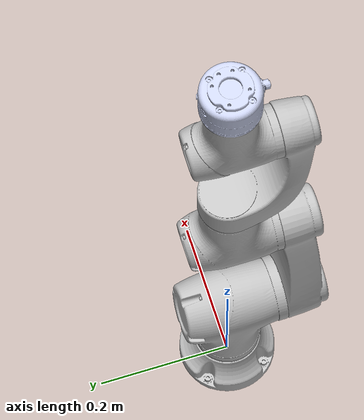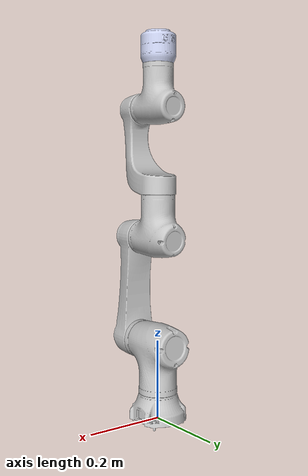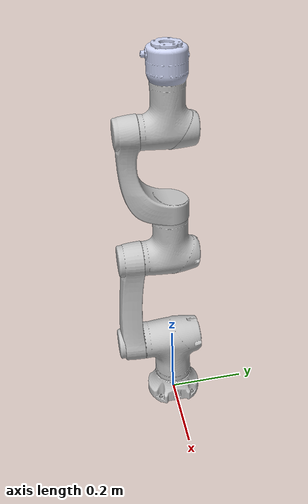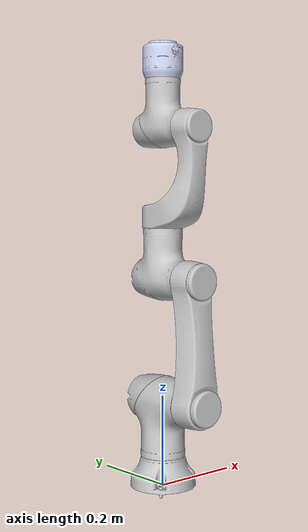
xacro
<?xml version="1.0"?>

<robot name="elfin3_pro" xmlns:xacro="http://wiki.ros.org/xacro">

  <xacro:arg name="use_real_hardware" default="true" />
  <xacro:arg name="use_fake_hardware" default="false" />

  <!-- Load TRANSMISSION file: -->
  <xacro:include filename="$(find elfin3_pro_ros2_gazebo)/urdf/elfin3_pro_transmission.xacro" />
  <!-- Load GAZEBO/ROS2_CONTROL file: -->
  <xacro:include filename="$(find elfin3_pro_ros2_gazebo)/urdf/elfin3_pro_gazebo.xacro" />

  <xacro:property name="PI" value="3.1415926535897931"/>

  <xacro:property name="density" value="3.09"/>

    <!-- TRANSMISSION: -->
    <xacro:elfin3_pro_transmission />
    <!-- GAZEBO - ROS2_CONTROL: -->
    <xacro:elfin3_pro_gazebo
    use_real_hardware="$(arg use_real_hardware)"
    use_fake_hardware="$(arg use_fake_hardware)"/>

  <link name="world"/>

  <joint name="world_base" type="fixed">
    <origin
      xyz="0 0 0"
      rpy="0 0 0" />
    <parent
      link="world" />
    <child
      link="elfin_base_link" />
  </joint>

  <link name="elfin_base_link"/>

  <joint name="elfin_base_joint" type="fixed">
    <origin
      xyz="0 0 0"
      rpy="0 0 0" />
    <parent
      link="elfin_base_link" />
    <child
      link="elfin_base" />
  </joint>

 <link
    name="elfin_base">
    <inertial>
      <origin
        xyz="-0.000275485599623296 7.59034702890055E-06 0.0267651528589008"
        rpy="0 0 0" />
      <mass
        value="0.728456071678781" />
      <inertia
        ixx="0.000970397629421625"
        ixy="3.62553999571498E-08"
        ixz="-1.47235460345842E-05"
        iyy="0.000882807913205131"
        iyz="-5.96416765250318E-08"
        izz="0.00145846071899871" />
    </inertial>
    <visual>
      <origin
        xyz="0 0 0"
        rpy="0 0 0" />
      <geometry>
        <mesh
          filename="file://$(find elfin_description)/meshes/elfin3_pro/elfin_base.STL" />
      </geometry>
      <material
        name="">
        <color
          rgba="0.752941176470588 0.752941176470588 0.752941176470588 1" />
      </material>
    </visual>
    <collision>
      <origin
        xyz="0 0 0"
        rpy="0 0 0" />
      <geometry>
        <mesh
          filename="file://$(find elfin_description)/meshes/elfin3_pro/elfin_base.STL" />
      </geometry>
    </collision>
  </link>
  <link
    name="elfin_link1">
    <inertial>
      <origin
        xyz="-9.19954052376613E-06 -0.0056323151590073 -0.0303120037895113"
        rpy="0 0 0" />
      <mass
        value="1.92524034587899" />
      <inertia
        ixx="0.0058722816317351"
        ixy="-7.23504344044524E-07"
        ixz="-2.49391334412292E-07"
        iyy="0.005172795229408"
        iyz="0.00112367432000291"
        izz="0.00316962454146614" />
    </inertial>
    <visual>
      <origin
        xyz="0 0 0"
        rpy="0 0 0" />
      <geometry>
        <mesh
          filename="file://$(find elfin_description)/meshes/elfin3_pro/elfin_link1.STL" />
      </geometry>
      <material
        name="">
        <color
          rgba="0.752941176470588 0.752941176470588 0.752941176470588 1" />
      </material>
    </visual>
    <collision>
      <origin
        xyz="0 0 0"
        rpy="0 0 0" />
      <geometry>
        <mesh
          filename="file://$(find elfin_description)/meshes/elfin3_pro/elfin_link1.STL" />
      </geometry>
    </collision>
  </link>
  <joint
    name="elfin_joint1"
    type="revolute">
    <origin
      xyz="0 0 0.1925"
      rpy="0 0 0" />
    <parent
      link="elfin_base" />
    <child
      link="elfin_link1" />
    <axis
      xyz="0 0 1" />
    <limit
      lower="-3.14"
      upper="3.14"
      effort="420"
      velocity="1.57" />
  </joint>
  <link
    name="elfin_link2">
    <inertial>
      <origin
        xyz="-1.22565268329047E-05 0.122777737373448 0.107534195375148"
        rpy="0 0 0" />
      <mass
        value="1.33352205550548" />
      <inertia
        ixx="0.0115890392637474"
        ixy="2.47639007244242E-06"
        ixz="-1.30890011076168E-07"
        iyy="0.000874262499109598"
        iyz="0.000516659498705414"
        izz="0.011961985959806" />
    </inertial>
    <visual>
      <origin
        xyz="0 0 0"
        rpy="0 0 0" />
      <geometry>
        <mesh
          filename="file://$(find elfin_description)/meshes/elfin3_pro/elfin_link2.STL" />
      </geometry>
      <material
        name="">
        <color
          rgba="0.752941176470588 0.752941176470588 0.752941176470588 1" />
      </material>
    </visual>
    <collision>
      <origin
        xyz="0 0 0"
        rpy="0 0 0" />
      <geometry>
        <mesh
          filename="file://$(find elfin_description)/meshes/elfin3_pro/elfin_link2.STL" />
      </geometry>
    </collision>
  </link>
  <joint
    name="elfin_joint2"
    type="revolute">
    <origin
      xyz="0 0 0"
      rpy="1.5708 0 0" />
    <parent
      link="elfin_link1" />
    <child
      link="elfin_link2" />
    <axis
      xyz="0 0 1" />
    <limit
      lower="-2.35"
      upper="2.35"
    effort="420"
      velocity="1.57" />
  </joint>
  <link
    name="elfin_link3">
    <inertial>
      <origin
        xyz="0.0273557300565924 5.44923368373772E-06 -0.00488491800210272"
        rpy="0 0 0" />
      <mass
        value="1.35222262444915" />
      <inertia
        ixx="0.00178062512968837"
        ixy="-2.23487843972252E-07"
        ixz="-0.000626861823592519"
        iyy="0.00332332684559261"
        iyz="-5.61198174626088E-07"
        izz="0.00287612109599716" />
    </inertial>
    <visual>
      <origin
        xyz="0 0 0"
        rpy="0 0 0" />
      <geometry>
        <mesh
          filename="file://$(find elfin_description)/meshes/elfin3_pro/elfin_link3.STL" />
      </geometry>
      <material
        name="">
        <color
          rgba="0.752941176470588 0.752941176470588 0.752941176470588 1" />
      </material>
    </visual>
    <collision>
      <origin
        xyz="0 0 0"
        rpy="0 0 0" />
      <geometry>
        <mesh
          filename="file://$(find elfin_description)/meshes/elfin3_pro/elfin_link3.STL" />
      </geometry>
    </collision>
  </link>
  <joint
    name="elfin_joint3"
    type="revolute">
    <origin
      xyz="0 0.266 0"
      rpy="3.1416 0 1.5708" />
    <parent
      link="elfin_link2" />
    <child
      link="elfin_link3" />
    <axis
      xyz="0 0 1" />
    <limit
      lower="-2.61"
      upper="2.61"
      effort="200"
      velocity="1.57" />
  </joint>
  <link
    name="elfin_link4">
    <inertial>
      <origin
        xyz="1.85755668727567E-06 -0.0570137437770611 0.20156180425512"
        rpy="0 0 0" />
      <mass
        value="1.07037349094834" />
      <inertia
        ixx="0.00657419518422127"
        ixy="3.55281474333352E-08"
        ixz="-4.08470748185401E-09"
        iyy="0.00537840730505389"
        iyz="0.00190728714674729"
        izz="0.00214023771843289" />
    </inertial>
    <visual>
      <origin
        xyz="0 0 0"
        rpy="0 0 0" />
      <geometry>
        <mesh
          filename="file://$(find elfin_description)/meshes/elfin3_pro/elfin_link4.STL" />
      </geometry>
      <material
        name="">
        <color
          rgba="0.752941176470588 0.752941176470588 0.752941176470588 1" />
      </material>
    </visual>
    <collision>
      <origin
        xyz="0 0 0"
        rpy="0 0 0" />
      <geometry>
        <mesh
          filename="file://$(find elfin_description)/meshes/elfin3_pro/elfin_link4.STL" />
      </geometry>
    </collision>
  </link>
  <joint
    name="elfin_joint4"
    type="revolute">
    <origin
      xyz="0 0 0"
      rpy="1.5708 0 1.5708" />
    <parent
      link="elfin_link3" />
    <child
      link="elfin_link4" />
    <axis
      xyz="0 0 1" />
    <limit
      lower="-3.14"
      upper="3.14"
      effort="200"
      velocity="1.57" />
  </joint>
  <link
    name="elfin_link5">
    <inertial>
      <origin
        xyz="1.3137995099076E-07 -0.0261329710845253 -0.00374026378281865"
        rpy="0 0 0" />
      <mass
        value="1.00586347330895" />
      <inertia
        ixx="0.00214966834755171"
        ixy="3.80046294098656E-08"
        ixz="8.42629576713527E-08"
        iyy="0.00109172648963445"
        iyz="0.000369881654077995"
        izz="0.00180770671822016" />
    </inertial>
    <visual>
      <origin
        xyz="0 0 0"
        rpy="0 0 0" />
      <geometry>
        <mesh
          filename="file://$(find elfin_description)/meshes/elfin3_pro/elfin_link5.STL" />
      </geometry>
      <material
        name="">
        <color
          rgba="0.752941176470588 0.752941176470588 0.752941176470588 1" />
      </material>
    </visual>
    <collision>
      <origin
        xyz="0 0 0"
        rpy="0 0 0" />
      <geometry>
        <mesh
          filename="file://$(find elfin_description)/meshes/elfin3_pro/elfin_link5.STL" />
      </geometry>
    </collision>
  </link>
  <joint
    name="elfin_joint5"
    type="revolute">
    <origin
      xyz="0 0 0.324"
      rpy="-1.5708 0 0" />
    <parent
      link="elfin_link4" />
    <child
      link="elfin_link5" />
    <axis
      xyz="0 0 1" />
    <limit
      lower="-2.56"
      upper="2.56"
      effort="69"
      velocity="1.57" />
  </joint>
  <link
    name="elfin_link6">
    <inertial>
      <origin
        xyz="-1.35206424711144E-05 -0.000477293421685998 0.146144684015296"
        rpy="0 0 0" />
      <mass
        value="0.126607991225674" />
      <inertia
        ixx="8.28987493784653E-05"
        ixy="-5.29790104975397E-09"
        ixz="5.70872353859482E-08"
        iyy="8.60223985136159E-05"
        iyz="-1.30049534273064E-07"
        izz="0.000156133453462763" />
    </inertial>
    <visual>
      <origin
        xyz="0 0 0"
        rpy="0 0 0" />
      <geometry>
        <mesh
          filename="file://$(find elfin_description)/meshes/elfin3_pro/elfin_link6.STL" />
      </geometry>
      <material
        name="">
        <color
          rgba="0.792156862745098 0.819607843137255 0.933333333333333 1" />
      </material>
    </visual>
    <collision>
      <origin
        xyz="0 0 0"
        rpy="0 0 0" />
      <geometry>
        <mesh
          filename="file://$(find elfin_description)/meshes/elfin3_pro/elfin_link6.STL" />
      </geometry>
    </collision>
  </link>
  <joint
    name="elfin_joint6"
    type="revolute">
    <origin
      xyz="0 0 0"
      rpy="1.5708 0 0" />
    <parent
      link="elfin_link5" />
    <child
      link="elfin_link6" />
    <axis
      xyz="0 0 1" />
    <limit
      lower="-3.14"
      upper="3.14"
      effort="69"
      velocity="1.57" />
  </joint>
  <link
    name="elfin_end_link"/>
  <joint
    name="elfin_end_joint"
    type="fixed">
    <origin
      xyz="0 0 0.184"
      rpy="0 0 0" />
    <parent
      link="elfin_link6" />
    <child
      link="elfin_end_link" />
    <axis
      xyz="0 0 0" />
  </joint>

  <link name="elfin_dummy_gripper"/>

  <joint name="elfin_dummy_joint" type="fixed">
    <origin
      xyz="0 -0.111 0"
      rpy="${PI/2} ${-PI/2} 0" />
    <parent
      link="elfin_link6" />
    <child
      link="elfin_dummy_gripper" />
  </joint>

</robot>
